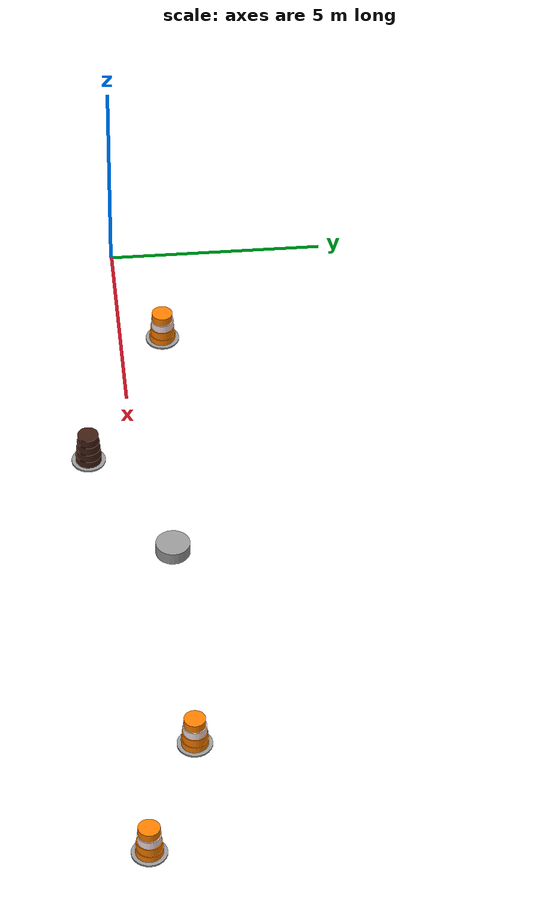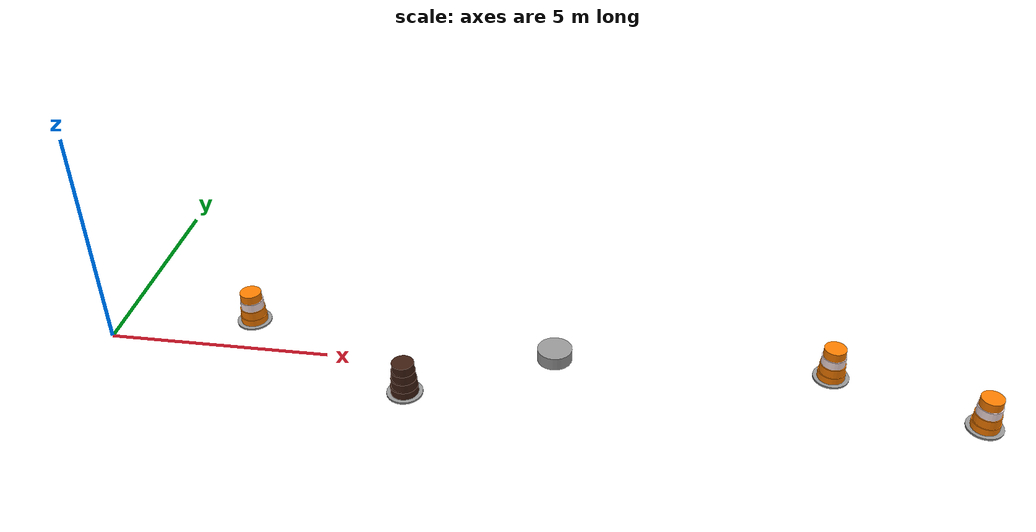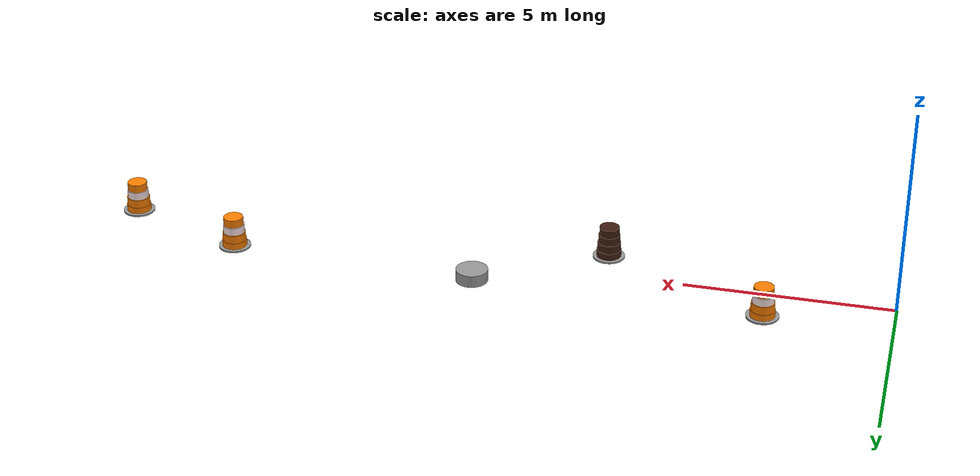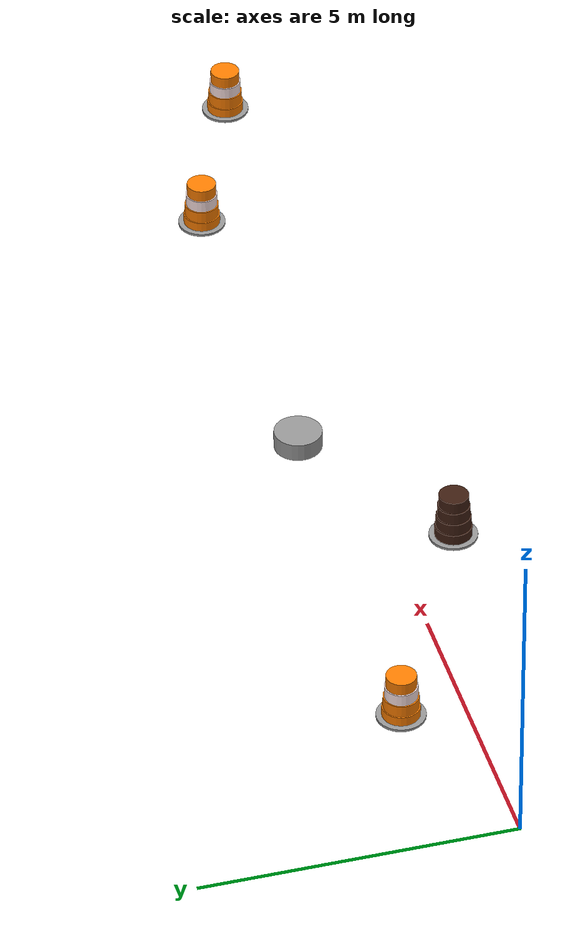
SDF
<sdf version="1.6">
 <world name="igvc_straight_pop">
  <gravity>0 0 -9.8</gravity>
  <magnetic_field>6e-06 2.3e-05 -4.2e-05</magnetic_field>
  <atmosphere type="adiabatic"/>
  <physics type="ode">
   <max_step_size>0.002</max_step_size>
   <real_time_update_rate>500</real_time_update_rate>
   <ode>
    <solver><type>quick</type><iters>50</iters><precon_iters>0</precon_iters><sor>1.300000</sor></solver>
    <constraints>
     <cfm>0.000000</cfm>
     <erp>0.200000</erp>
     <contact_max_correcting_vel>100.000000</contact_max_correcting_vel>
     <contact_surface_layer>0.001000</contact_surface_layer>
    </constraints>
   </ode>
  </physics>
  <scene><ambient>1 1 1 1</ambient><background>0.7 0.7 0.7 1</background><shadows>1</shadows></scene>
  <spherical_coordinates>
   <surface_model>EARTH_WGS84</surface_model>
   <latitude_deg>042.729306</latitude_deg>
   <longitude_deg>-73.680906</longitude_deg>
   <elevation>0</elevation>
   <heading_deg>180</heading_deg>
  </spherical_coordinates>
  <include><uri>model://sun</uri><pose>0 0 20   0 0 0</pose></include>
  <include>
   <uri>model://construction_barrel_orange</uri>
   <name>barrel_1</name>
   <pose>3 1 0   0 0 0</pose>
  </include>
  <include>
   <uri>model://construction_barrel_brown</uri>
   <name>barrel_2</name>
   <pose>7 -1 0   0 0 0</pose>
  </include>
  <include><uri>model://pothole</uri><name>pothole_1</name><pose>10 0.7 0   0 0 0</pose></include>
  <include>
   <uri>model://construction_barrel_orange</uri>
   <name>barrel_3</name>
   <pose>16 0.7 0   0 0 0</pose>
  </include>
  <include>
   <uri>model://construction_barrel_orange</uri>
   <name>barrel_4</name>
   <pose>19 -0.5 0   0 0 0</pose>
  </include>
  <plugin name="FixFrictionNode" filename="libFixFrictionNode.so"/>
 </world>
</sdf>

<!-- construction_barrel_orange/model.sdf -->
<sdf version='1.6'>
  <model name='construction_barrel_orange'>
    <link name='rubber_skirt'>
      <pose frame=''>0 0 0.02 0 -0 0</pose>
      <inertial>
        <mass>1</mass>
        <inertia>
          <ixx>0.145833</ixx>
          <ixy>0</ixy>
          <ixz>0</ixz>
          <iyy>0.145833</iyy>
          <iyz>0</iyz>
          <izz>0.125</izz>
        </inertia>
        <pose frame=''>0 0 0 0 -0 0</pose>
      </inertial>
      <self_collide>0</self_collide>
      <kinematic>0</kinematic>
      <visual name='visual'>
        <pose frame=''>0 0 0 0 -0 0</pose>
        <geometry>
          <cylinder>
            <radius>0.39</radius>
            <length>0.04</length>
          </cylinder>
        </geometry>
        <material>
          <lighting>1</lighting>
          <script>
            <uri>file://media/materials/scripts/gazebo.material</uri>
            <name>Gazebo/Grey</name>
          </script>
          <shader type='pixel'>
            <normal_map>__default__</normal_map>
          </shader>
          <ambient>0.3 0.3 0.3 1</ambient>
          <diffuse>0.7 0.7 0.7 1</diffuse>
          <specular>0.01 0.01 0.01 1</specular>
          <emissive>0 0 0 1</emissive>
        </material>
        <transparency>0</transparency>
        <cast_shadows>1</cast_shadows>
      </visual>
      <collision name='collision'>
        <laser_retro>0</laser_retro>
        <max_contacts>10</max_contacts>
        <pose frame=''>0 0 0 0 -0 0</pose>
        <geometry>
          <cylinder>
            <radius>0.39</radius>
            <length>0.04</length>
          </cylinder>
        </geometry>
        <surface>
          <friction>
            <ode>
              <mu>1</mu>
              <mu2>1</mu2>
              <fdir1>0 0 0</fdir1>
              <slip1>0</slip1>
              <slip2>0</slip2>
            </ode>
            <torsional>
              <coefficient>1</coefficient>
              <patch_radius>0</patch_radius>
              <surface_radius>0</surface_radius>
              <use_patch_radius>1</use_patch_radius>
              <ode>
                <slip>0</slip>
              </ode>
            </torsional>
          </friction>
          <bounce>
            <restitution_coefficient>0</restitution_coefficient>
            <threshold>1e+06</threshold>
          </bounce>
          <contact>
            <collide_without_contact>0</collide_without_contact>
            <collide_without_contact_bitmask>1</collide_without_contact_bitmask>
            <collide_bitmask>1</collide_bitmask>
            <ode>
              <soft_cfm>0</soft_cfm>
              <soft_erp>0.2</soft_erp>
              <kp>1e+13</kp>
              <kd>1</kd>
              <max_vel>0.01</max_vel>
              <min_depth>0</min_depth>
            </ode>
            <bullet>
              <split_impulse>1</split_impulse>
              <split_impulse_penetration_threshold>-0.01</split_impulse_penetration_threshold>
              <soft_cfm>0</soft_cfm>
              <soft_erp>0.2</soft_erp>
              <kp>1e+13</kp>
              <kd>1</kd>
            </bullet>
          </contact>
        </surface>
      </collision>
    </link>
    <link name='drum_1'>
      <pose frame=''>0 0 0.1 0 -0 0</pose>
      <inertial>
        <mass>0.201505</mass>
        <inertia>
          <ixx>0.0132759</ixx>
          <ixy>0</ixy>
          <ixz>0</ixz>
          <iyy>0.0132759</iyy>
          <iyz>0</iyz>
          <izz>0.0251882</izz>
        </inertia>
        <pose frame=''>0 0 0 0 -0 0</pose>
      </inertial>
      <self_collide>0</self_collide>
      <kinematic>0</kinematic>
      <visual name='visual'>
        <geometry>
          <cylinder>
            <radius>0.3</radius>
            <length>0.2</length>
          </cylinder>
        </geometry>
        <material>
          <script>
            <name>Gazebo/Grey</name>
            <uri>file://media/materials/scripts/gazebo.material</uri>
          </script>
          <shader type='pixel'>
            <normal_map>__default__</normal_map>
          </shader>
          <ambient>1 0.5 0 1</ambient>
          <diffuse>1 0.5 0 1</diffuse>
          <specular>1 0.5 0 1</specular>
          <emissive>0 0 0 1</emissive>
        </material>
        <pose frame=''>0 0 0 0 -0 0</pose>
        <transparency>0</transparency>
        <cast_shadows>1</cast_shadows>
      </visual>
      <collision name='collision'>
        <laser_retro>0</laser_retro>
        <max_contacts>10</max_contacts>
        <pose frame=''>0 0 0 0 -0 0</pose>
        <geometry>
          <cylinder>
            <radius>0.3</radius>
            <length>0.2</length>
          </cylinder>
        </geometry>
        <surface>
          <friction>
            <ode>
              <mu>1</mu>
              <mu2>1</mu2>
              <fdir1>0 0 0</fdir1>
              <slip1>0</slip1>
              <slip2>0</slip2>
            </ode>
            <torsional>
              <coefficient>1</coefficient>
              <patch_radius>0</patch_radius>
              <surface_radius>0</surface_radius>
              <use_patch_radius>1</use_patch_radius>
              <ode>
                <slip>0</slip>
              </ode>
            </torsional>
          </friction>
          <bounce>
            <restitution_coefficient>0</restitution_coefficient>
            <threshold>1e+06</threshold>
          </bounce>
          <contact>
            <collide_without_contact>0</collide_without_contact>
            <collide_without_contact_bitmask>1</collide_without_contact_bitmask>
            <collide_bitmask>1</collide_bitmask>
            <ode>
              <soft_cfm>0</soft_cfm>
              <soft_erp>0.2</soft_erp>
              <kp>1e+13</kp>
              <kd>1</kd>
              <max_vel>0.01</max_vel>
              <min_depth>0</min_depth>
            </ode>
            <bullet>
              <split_impulse>1</split_impulse>
              <split_impulse_penetration_threshold>-0.01</split_impulse_penetration_threshold>
              <soft_cfm>0</soft_cfm>
              <soft_erp>0.2</soft_erp>
              <kp>1e+13</kp>
              <kd>1</kd>
            </bullet>
          </contact>
        </surface>
      </collision>
    </link>
    <link name='drum_2'>
      <pose frame=''>0 0 0.3 0 -0 0</pose>
      <inertial>
        <mass>0.201505</mass>
        <inertia>
          <ixx>0.0132759</ixx>
          <ixy>0</ixy>
          <ixz>0</ixz>
          <iyy>0.0132759</iyy>
          <iyz>0</iyz>
          <izz>0.0251882</izz>
        </inertia>
        <pose frame=''>0 0 0 0 -0 0</pose>
      </inertial>
      <self_collide>0</self_collide>
      <kinematic>0</kinematic>
      <visual name='visual'>
        <geometry>
          <cylinder>
            <radius>0.28</radius>
            <length>0.2</length>
          </cylinder>
        </geometry>
        <material>
          <script>
            <name>Gazebo/Grey</name>
            <uri>file://media/materials/scripts/gazebo.material</uri>
          </script>
          <shader type='pixel'>
            <normal_map>__default__</normal_map>
          </shader>
          <ambient>1 0.5 0 1</ambient>
          <diffuse>1 0.5 0 1</diffuse>
          <specular>1 0.5 0 1</specular>
          <emissive>0 0 0 1</emissive>
        </material>
        <pose frame=''>0 0 0 0 -0 0</pose>
        <transparency>0</transparency>
        <cast_shadows>1</cast_shadows>
      </visual>
      <collision name='collision'>
        <laser_retro>0</laser_retro>
        <max_contacts>10</max_contacts>
        <pose frame=''>0 0 0 0 -0 0</pose>
        <geometry>
          <cylinder>
            <radius>0.28</radius>
            <length>0.2</length>
          </cylinder>
        </geometry>
        <surface>
          <friction>
            <ode>
              <mu>1</mu>
              <mu2>1</mu2>
              <fdir1>0 0 0</fdir1>
              <slip1>0</slip1>
              <slip2>0</slip2>
            </ode>
            <torsional>
              <coefficient>1</coefficient>
              <patch_radius>0</patch_radius>
              <surface_radius>0</surface_radius>
              <use_patch_radius>1</use_patch_radius>
              <ode>
                <slip>0</slip>
              </ode>
            </torsional>
          </friction>
          <bounce>
            <restitution_coefficient>0</restitution_coefficient>
            <threshold>1e+06</threshold>
          </bounce>
          <contact>
            <collide_without_contact>0</collide_without_contact>
            <collide_without_contact_bitmask>1</collide_without_contact_bitmask>
            <collide_bitmask>1</collide_bitmask>
            <ode>
              <soft_cfm>0</soft_cfm>
              <soft_erp>0.2</soft_erp>
              <kp>1e+13</kp>
              <kd>1</kd>
              <max_vel>0.01</max_vel>
              <min_depth>0</min_depth>
            </ode>
            <bullet>
              <split_impulse>1</split_impulse>
              <split_impulse_penetration_threshold>-0.01</split_impulse_penetration_threshold>
              <soft_cfm>0</soft_cfm>
              <soft_erp>0.2</soft_erp>
              <kp>1e+13</kp>
              <kd>1</kd>
            </bullet>
          </contact>
        </surface>
      </collision>
    </link>
    <link name='drum_3'>
      <pose frame=''>0 0 0.5 0 -0 0</pose>
      <inertial>
        <mass>0.201505</mass>
        <inertia>
          <ixx>0.0132759</ixx>
          <ixy>0</ixy>
          <ixz>0</ixz>
          <iyy>0.0132759</iyy>
          <iyz>0</iyz>
          <izz>0.0251882</izz>
        </inertia>
        <pose frame=''>0 0 0 0 -0 0</pose>
      </inertial>
      <self_collide>0</self_collide>
      <kinematic>0</kinematic>
      <visual name='visual'>
        <geometry>
          <cylinder>
            <radius>0.26</radius>
            <length>0.2</length>
          </cylinder>
        </geometry>
        <material>
          <script>
            <name>Gazebo/Grey</name>
            <uri>file://media/materials/scripts/gazebo.material</uri>
          </script>
          <shader type='pixel'>
            <normal_map>__default__</normal_map>
          </shader>
          <ambient>1 0.9 0.9 1</ambient>
          <diffuse>1 0.9 0.9 1</diffuse>
          <specular>1 0.9 0.9 1</specular>
          <emissive>0 0 0 1</emissive>
        </material>
        <pose frame=''>0 0 0 0 -0 0</pose>
        <transparency>0</transparency>
        <cast_shadows>1</cast_shadows>
      </visual>
      <collision name='collision'>
        <laser_retro>0</laser_retro>
        <max_contacts>10</max_contacts>
        <pose frame=''>0 0 0 0 -0 0</pose>
        <geometry>
          <cylinder>
            <radius>0.26</radius>
            <length>0.2</length>
          </cylinder>
        </geometry>
        <surface>
          <friction>
            <ode>
              <mu>1</mu>
              <mu2>1</mu2>
              <fdir1>0 0 0</fdir1>
              <slip1>0</slip1>
              <slip2>0</slip2>
            </ode>
            <torsional>
              <coefficient>1</coefficient>
              <patch_radius>0</patch_radius>
              <surface_radius>0</surface_radius>
              <use_patch_radius>1</use_patch_radius>
              <ode>
                <slip>0</slip>
              </ode>
            </torsional>
          </friction>
          <bounce>
            <restitution_coefficient>0</restitution_coefficient>
            <threshold>1e+06</threshold>
          </bounce>
          <contact>
            <collide_without_contact>0</collide_without_contact>
            <collide_without_contact_bitmask>1</collide_without_contact_bitmask>
            <collide_bitmask>1</collide_bitmask>
            <ode>
              <soft_cfm>0</soft_cfm>
              <soft_erp>0.2</soft_erp>
              <kp>1e+13</kp>
              <kd>1</kd>
              <max_vel>0.01</max_vel>
              <min_depth>0</min_depth>
            </ode>
            <bullet>
              <split_impulse>1</split_impulse>
              <split_impulse_penetration_threshold>-0.01</split_impulse_penetration_threshold>
              <soft_cfm>0</soft_cfm>
              <soft_erp>0.2</soft_erp>
              <kp>1e+13</kp>
              <kd>1</kd>
            </bullet>
          </contact>
        </surface>
      </collision>
    </link>
    <link name='drum_4'>
      <pose frame=''>0 0 0.7 0 -0 0</pose>
      <inertial>
        <mass>0.201505</mass>
        <inertia>
          <ixx>0.0132759</ixx>
          <ixy>0</ixy>
          <ixz>0</ixz>
          <iyy>0.0132759</iyy>
          <iyz>0</iyz>
          <izz>0.0251882</izz>
        </inertia>
        <pose frame=''>0 0 0 0 -0 0</pose>
      </inertial>
      <self_collide>0</self_collide>
      <kinematic>0</kinematic>
      <visual name='visual'>
        <geometry>
          <cylinder>
            <radius>0.24</radius>
            <length>0.2</length>
          </cylinder>
        </geometry>
        <material>
          <script>
            <name>Gazebo/Grey</name>
            <uri>file://media/materials/scripts/gazebo.material</uri>
          </script>
          <shader type='pixel'>
            <normal_map>__default__</normal_map>
          </shader>
          <ambient>1 0.5 0 1</ambient>
          <diffuse>1 0.5 0 1</diffuse>
          <specular>1 0.5 0 1</specular>
          <emissive>0 0 0 1</emissive>
        </material>
        <pose frame=''>0 0 0 0 -0 0</pose>
        <transparency>0</transparency>
        <cast_shadows>1</cast_shadows>
      </visual>
      <collision name='collision'>
        <laser_retro>0</laser_retro>
        <max_contacts>10</max_contacts>
        <pose frame=''>0 0 0 0 -0 0</pose>
        <geometry>
          <cylinder>
            <radius>0.24</radius>
            <length>0.2</length>
          </cylinder>
        </geometry>
        <surface>
          <friction>
            <ode>
              <mu>1</mu>
              <mu2>1</mu2>
              <fdir1>0 0 0</fdir1>
              <slip1>0</slip1>
              <slip2>0</slip2>
            </ode>
            <torsional>
              <coefficient>1</coefficient>
              <patch_radius>0</patch_radius>
              <surface_radius>0</surface_radius>
              <use_patch_radius>1</use_patch_radius>
              <ode>
                <slip>0</slip>
              </ode>
            </torsional>
          </friction>
          <bounce>
            <restitution_coefficient>0</restitution_coefficient>
            <threshold>1e+06</threshold>
          </bounce>
          <contact>
            <collide_without_contact>0</collide_without_contact>
            <collide_without_contact_bitmask>1</collide_without_contact_bitmask>
            <collide_bitmask>1</collide_bitmask>
            <ode>
              <soft_cfm>0</soft_cfm>
              <soft_erp>0.2</soft_erp>
              <kp>1e+13</kp>
              <kd>1</kd>
              <max_vel>0.01</max_vel>
              <min_depth>0</min_depth>
            </ode>
            <bullet>
              <split_impulse>1</split_impulse>
              <split_impulse_penetration_threshold>-0.01</split_impulse_penetration_threshold>
              <soft_cfm>0</soft_cfm>
              <soft_erp>0.2</soft_erp>
              <kp>1e+13</kp>
              <kd>1</kd>
            </bullet>
          </contact>
        </surface>
      </collision>
    </link>
    <joint name='drum_1_JOINT_1' type='fixed'>
      <parent>drum_1</parent>
      <child>drum_2</child>
      <pose frame=''>0 0 0 0 -0 0</pose>
      <physics>
        <ode>
          <limit>
            <cfm>0</cfm>
            <erp>0.2</erp>
          </limit>
          <suspension>
            <cfm>0</cfm>
            <erp>0.2</erp>
          </suspension>
        </ode>
      </physics>
    </joint>
    <joint name='drum_2_JOINT_3' type='fixed'>
      <parent>drum_2</parent>
      <child>drum_3</child>
      <pose frame=''>0 0 0 0 -0 0</pose>
      <physics>
        <ode>
          <limit>
            <cfm>0</cfm>
            <erp>0.2</erp>
          </limit>
          <suspension>
            <cfm>0</cfm>
            <erp>0.2</erp>
          </suspension>
        </ode>
      </physics>
    </joint>
    <joint name='drum_3_JOINT_2' type='fixed'>
      <parent>drum_3</parent>
      <child>drum_4</child>
      <pose frame=''>0 0 0 0 -0 0</pose>
      <physics>
        <ode>
          <limit>
            <cfm>0</cfm>
            <erp>0.2</erp>
          </limit>
          <suspension>
            <cfm>0</cfm>
            <erp>0.2</erp>
          </suspension>
        </ode>
      </physics>
    </joint>
    <joint name='rubber_skirt_JOINT_0' type='fixed'>
      <parent>rubber_skirt</parent>
      <child>drum_1</child>
      <pose frame=''>0 0 0 0 -0 0</pose>
      <physics>
        <ode>
          <limit>
            <cfm>0</cfm>
            <erp>0.2</erp>
          </limit>
          <suspension>
            <cfm>0</cfm>
            <erp>0.2</erp>
          </suspension>
        </ode>
      </physics>
    </joint>
    <static>1</static>
    <allow_auto_disable>1</allow_auto_disable>
  </model>
</sdf>

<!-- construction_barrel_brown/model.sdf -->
<sdf version='1.6'>
  <model name='construction_barrel_brown'>
    <link name='link_0'>
      <pose frame=''>0 0 0.005 0 -0 0</pose>
      <inertial>
        <mass>1</mass>
        <inertia>
          <ixx>0.145833</ixx>
          <ixy>0</ixy>
          <ixz>0</ixz>
          <iyy>0.145833</iyy>
          <iyz>0</iyz>
          <izz>0.125</izz>
        </inertia>
        <pose frame=''>0 0 0 0 -0 0</pose>
      </inertial>
      <gravity>1</gravity>
      <self_collide>0</self_collide>
      <kinematic>0</kinematic>
      <visual name='visual'>
        <pose frame=''>0 0 0 0 -0 0</pose>
        <geometry>
          <cylinder>
            <radius>0.39</radius>
            <length>0.04</length>
          </cylinder>
        </geometry>
        <material>
          <lighting>1</lighting>
          <script>
            <uri>file://media/materials/scripts/gazebo.material</uri>
            <name>Gazebo/Grey</name>
          </script>
          <shader type='pixel'>
            <normal_map>__default__</normal_map>
          </shader>
          <ambient>0.3 0.3 0.3 1</ambient>
          <diffuse>0.7 0.7 0.7 1</diffuse>
          <specular>0.01 0.01 0.01 1</specular>
          <emissive>0 0 0 1</emissive>
        </material>
        <transparency>0</transparency>
        <cast_shadows>1</cast_shadows>
      </visual>
      <collision name='collision'>
        <laser_retro>0</laser_retro>
        <max_contacts>10</max_contacts>
        <pose frame=''>0 0 0 0 -0 0</pose>
        <geometry>
          <cylinder>
            <radius>0.39</radius>
            <length>0.04</length>
          </cylinder>
        </geometry>
        <surface>
          <friction>
            <ode>
              <mu>1</mu>
              <mu2>1</mu2>
              <fdir1>0 0 0</fdir1>
              <slip1>0</slip1>
              <slip2>0</slip2>
            </ode>
            <torsional>
              <coefficient>1</coefficient>
              <patch_radius>0</patch_radius>
              <surface_radius>0</surface_radius>
              <use_patch_radius>1</use_patch_radius>
              <ode>
                <slip>0</slip>
              </ode>
            </torsional>
          </friction>
          <bounce>
            <restitution_coefficient>0</restitution_coefficient>
            <threshold>1e+06</threshold>
          </bounce>
          <contact>
            <collide_without_contact>0</collide_without_contact>
            <collide_without_contact_bitmask>1</collide_without_contact_bitmask>
            <collide_bitmask>1</collide_bitmask>
            <ode>
              <soft_cfm>0</soft_cfm>
              <soft_erp>0.2</soft_erp>
              <kp>1e+13</kp>
              <kd>1</kd>
              <max_vel>0.01</max_vel>
              <min_depth>0</min_depth>
            </ode>
            <bullet>
              <split_impulse>1</split_impulse>
              <split_impulse_penetration_threshold>-0.01</split_impulse_penetration_threshold>
              <soft_cfm>0</soft_cfm>
              <soft_erp>0.2</soft_erp>
              <kp>1e+13</kp>
              <kd>1</kd>
            </bullet>
          </contact>
        </surface>
      </collision>
    </link>
    <link name='link_clone'>
      <pose frame=''>0 0 0.1 0 -0 0</pose>
      <inertial>
        <mass>0.201505</mass>
        <inertia>
          <ixx>0.0132759</ixx>
          <ixy>0</ixy>
          <ixz>0</ixz>
          <iyy>0.0132759</iyy>
          <iyz>0</iyz>
          <izz>0.0251882</izz>
        </inertia>
        <pose frame=''>0 0 0 0 -0 0</pose>
      </inertial>
      <self_collide>0</self_collide>
      <kinematic>0</kinematic>
      <gravity>1</gravity>
      <visual name='visual'>
        <geometry>
          <cylinder>
            <radius>0.3</radius>
            <length>0.2</length>
          </cylinder>
        </geometry>
        <material>
          <script>
            <name>Gazebo/Grey</name>
            <uri>file://media/materials/scripts/gazebo.material</uri>
          </script>
          <shader type='pixel'>
            <normal_map>__default__</normal_map>
          </shader>
          <ambient>0.25 0.12 0.07 1</ambient>
          <diffuse>0.25 0.12 0.07 1</diffuse>
          <specular>0.25 0.12 0.07 1</specular>
          <emissive>0 0 0 1</emissive>
        </material>
        <pose frame=''>0 0 0 0 -0 0</pose>
        <transparency>0</transparency>
        <cast_shadows>1</cast_shadows>
      </visual>
      <collision name='collision'>
        <laser_retro>0</laser_retro>
        <max_contacts>10</max_contacts>
        <pose frame=''>0 0 0 0 -0 0</pose>
        <geometry>
          <cylinder>
            <radius>0.3</radius>
            <length>0.2</length>
          </cylinder>
        </geometry>
        <surface>
          <friction>
            <ode>
              <mu>1</mu>
              <mu2>1</mu2>
              <fdir1>0 0 0</fdir1>
              <slip1>0</slip1>
              <slip2>0</slip2>
            </ode>
            <torsional>
              <coefficient>1</coefficient>
              <patch_radius>0</patch_radius>
              <surface_radius>0</surface_radius>
              <use_patch_radius>1</use_patch_radius>
              <ode>
                <slip>0</slip>
              </ode>
            </torsional>
          </friction>
          <bounce>
            <restitution_coefficient>0</restitution_coefficient>
            <threshold>1e+06</threshold>
          </bounce>
          <contact>
            <collide_without_contact>0</collide_without_contact>
            <collide_without_contact_bitmask>1</collide_without_contact_bitmask>
            <collide_bitmask>1</collide_bitmask>
            <ode>
              <soft_cfm>0</soft_cfm>
              <soft_erp>0.2</soft_erp>
              <kp>1e+13</kp>
              <kd>1</kd>
              <max_vel>0.01</max_vel>
              <min_depth>0</min_depth>
            </ode>
            <bullet>
              <split_impulse>1</split_impulse>
              <split_impulse_penetration_threshold>-0.01</split_impulse_penetration_threshold>
              <soft_cfm>0</soft_cfm>
              <soft_erp>0.2</soft_erp>
              <kp>1e+13</kp>
              <kd>1</kd>
            </bullet>
          </contact>
        </surface>
      </collision>
    </link>
    <link name='link_clone_clone'>
      <pose frame=''>0 0 0.3 0 -0 0</pose>
      <inertial>
        <mass>0.201505</mass>
        <inertia>
          <ixx>0.0132759</ixx>
          <ixy>0</ixy>
          <ixz>0</ixz>
          <iyy>0.0132759</iyy>
          <iyz>0</iyz>
          <izz>0.0251882</izz>
        </inertia>
        <pose frame=''>0 0 0 0 -0 0</pose>
      </inertial>
      <self_collide>0</self_collide>
      <kinematic>0</kinematic>
      <gravity>1</gravity>
      <visual name='visual'>
        <geometry>
          <cylinder>
            <radius>0.28</radius>
            <length>0.2</length>
          </cylinder>
        </geometry>
        <material>
          <script>
            <name>Gazebo/Grey</name>
            <uri>file://media/materials/scripts/gazebo.material</uri>
          </script>
          <shader type='pixel'>
            <normal_map>__default__</normal_map>
          </shader>
          <ambient>0.25 0.12 0.07 1</ambient>
          <diffuse>0.25 0.12 0.07 1</diffuse>
          <specular>0.25 0.12 0.07 1</specular>
          <emissive>0 0 0 1</emissive>
        </material>
        <pose frame=''>0 0 0 0 -0 0</pose>
        <transparency>0</transparency>
        <cast_shadows>1</cast_shadows>
      </visual>
      <collision name='collision'>
        <laser_retro>0</laser_retro>
        <max_contacts>10</max_contacts>
        <pose frame=''>0 0 0 0 -0 0</pose>
        <geometry>
          <cylinder>
            <radius>0.28</radius>
            <length>0.2</length>
          </cylinder>
        </geometry>
        <surface>
          <friction>
            <ode>
              <mu>1</mu>
              <mu2>1</mu2>
              <fdir1>0 0 0</fdir1>
              <slip1>0</slip1>
              <slip2>0</slip2>
            </ode>
            <torsional>
              <coefficient>1</coefficient>
              <patch_radius>0</patch_radius>
              <surface_radius>0</surface_radius>
              <use_patch_radius>1</use_patch_radius>
              <ode>
                <slip>0</slip>
              </ode>
            </torsional>
          </friction>
          <bounce>
            <restitution_coefficient>0</restitution_coefficient>
            <threshold>1e+06</threshold>
          </bounce>
          <contact>
            <collide_without_contact>0</collide_without_contact>
            <collide_without_contact_bitmask>1</collide_without_contact_bitmask>
            <collide_bitmask>1</collide_bitmask>
            <ode>
              <soft_cfm>0</soft_cfm>
              <soft_erp>0.2</soft_erp>
              <kp>1e+13</kp>
              <kd>1</kd>
              <max_vel>0.01</max_vel>
              <min_depth>0</min_depth>
            </ode>
            <bullet>
              <split_impulse>1</split_impulse>
              <split_impulse_penetration_threshold>-0.01</split_impulse_penetration_threshold>
              <soft_cfm>0</soft_cfm>
              <soft_erp>0.2</soft_erp>
              <kp>1e+13</kp>
              <kd>1</kd>
            </bullet>
          </contact>
        </surface>
      </collision>
    </link>
    <link name='link_clone_clone_0'>
      <pose frame=''>0 0 0.5 0 0 0</pose>
      <inertial>
        <mass>0.201505</mass>
        <inertia>
          <ixx>0.0132759</ixx>
          <ixy>0</ixy>
          <ixz>0</ixz>
          <iyy>0.0132759</iyy>
          <iyz>0</iyz>
          <izz>0.0251882</izz>
        </inertia>
        <pose frame=''>0 0 0 0 -0 0</pose>
      </inertial>
      <self_collide>0</self_collide>
      <kinematic>0</kinematic>
      <gravity>1</gravity>
      <visual name='visual'>
        <geometry>
          <cylinder>
            <radius>0.26</radius>
            <length>0.2</length>
          </cylinder>
        </geometry>
        <material>
          <script>
            <name>Gazebo/Grey</name>
            <uri>file://media/materials/scripts/gazebo.material</uri>
          </script>
          <shader type='pixel'>
            <normal_map>__default__</normal_map>
          </shader>
          <ambient>0.25 0.12 0.07 1</ambient>
          <diffuse>0.25 0.12 0.07 1</diffuse>
          <specular>0.25 0.12 0.07 1</specular>
          <emissive>0 0 0 1</emissive>
        </material>
        <pose frame=''>0 0 0 0 -0 0</pose>
        <transparency>0</transparency>
        <cast_shadows>1</cast_shadows>
      </visual>
      <collision name='collision'>
        <laser_retro>0</laser_retro>
        <max_contacts>10</max_contacts>
        <pose frame=''>0 0 0 0 -0 0</pose>
        <geometry>
          <cylinder>
            <radius>0.26</radius>
            <length>0.2</length>
          </cylinder>
        </geometry>
        <surface>
          <friction>
            <ode>
              <mu>1</mu>
              <mu2>1</mu2>
              <fdir1>0 0 0</fdir1>
              <slip1>0</slip1>
              <slip2>0</slip2>
            </ode>
            <torsional>
              <coefficient>1</coefficient>
              <patch_radius>0</patch_radius>
              <surface_radius>0</surface_radius>
              <use_patch_radius>1</use_patch_radius>
              <ode>
                <slip>0</slip>
              </ode>
            </torsional>
          </friction>
          <bounce>
            <restitution_coefficient>0</restitution_coefficient>
            <threshold>1e+06</threshold>
          </bounce>
          <contact>
            <collide_without_contact>0</collide_without_contact>
            <collide_without_contact_bitmask>1</collide_without_contact_bitmask>
            <collide_bitmask>1</collide_bitmask>
            <ode>
              <soft_cfm>0</soft_cfm>
              <soft_erp>0.2</soft_erp>
              <kp>1e+13</kp>
              <kd>1</kd>
              <max_vel>0.01</max_vel>
              <min_depth>0</min_depth>
            </ode>
            <bullet>
              <split_impulse>1</split_impulse>
              <split_impulse_penetration_threshold>-0.01</split_impulse_penetration_threshold>
              <soft_cfm>0</soft_cfm>
              <soft_erp>0.2</soft_erp>
              <kp>1e+13</kp>
              <kd>1</kd>
            </bullet>
          </contact>
        </surface>
      </collision>
    </link>
    <link name='link_clone_clone_1'>
      <pose frame=''>-0 -0 0.7 0 -0 0</pose>
      <inertial>
        <mass>0.201505</mass>
        <inertia>
          <ixx>0.0132759</ixx>
          <ixy>0</ixy>
          <ixz>0</ixz>
          <iyy>0.0132759</iyy>
          <iyz>0</iyz>
          <izz>0.0251882</izz>
        </inertia>
        <pose frame=''>0 0 0 0 -0 0</pose>
      </inertial>
      <self_collide>0</self_collide>
      <kinematic>0</kinematic>
      <gravity>1</gravity>
      <visual name='visual'>
        <geometry>
          <cylinder>
            <radius>0.24</radius>
            <length>0.2</length>
          </cylinder>
        </geometry>
        <material>
          <script>
            <name>Gazebo/Grey</name>
            <uri>file://media/materials/scripts/gazebo.material</uri>
          </script>
          <shader type='pixel'>
            <normal_map>__default__</normal_map>
          </shader>
          <ambient>0.25 0.12 0.07 1</ambient>
          <diffuse>0.25 0.12 0.07 1</diffuse>
          <specular>0.25 0.12 0.07 1</specular>
          <emissive>0 0 0 1</emissive>
        </material>
        <pose frame=''>0 0 0 0 -0 0</pose>
        <transparency>0</transparency>
        <cast_shadows>1</cast_shadows>
      </visual>
      <collision name='collision'>
        <laser_retro>0</laser_retro>
        <max_contacts>10</max_contacts>
        <pose frame=''>0 0 0 0 -0 0</pose>
        <geometry>
          <cylinder>
            <radius>0.24</radius>
            <length>0.2</length>
          </cylinder>
        </geometry>
        <surface>
          <friction>
            <ode>
              <mu>1</mu>
              <mu2>1</mu2>
              <fdir1>0 0 0</fdir1>
              <slip1>0</slip1>
              <slip2>0</slip2>
            </ode>
            <torsional>
              <coefficient>1</coefficient>
              <patch_radius>0</patch_radius>
              <surface_radius>0</surface_radius>
              <use_patch_radius>1</use_patch_radius>
              <ode>
                <slip>0</slip>
              </ode>
            </torsional>
          </friction>
          <bounce>
            <restitution_coefficient>0</restitution_coefficient>
            <threshold>1e+06</threshold>
          </bounce>
          <contact>
            <collide_without_contact>0</collide_without_contact>
            <collide_without_contact_bitmask>1</collide_without_contact_bitmask>
            <collide_bitmask>1</collide_bitmask>
            <ode>
              <soft_cfm>0</soft_cfm>
              <soft_erp>0.2</soft_erp>
              <kp>1e+13</kp>
              <kd>1</kd>
              <max_vel>0.01</max_vel>
              <min_depth>0</min_depth>
            </ode>
            <bullet>
              <split_impulse>1</split_impulse>
              <split_impulse_penetration_threshold>-0.01</split_impulse_penetration_threshold>
              <soft_cfm>0</soft_cfm>
              <soft_erp>0.2</soft_erp>
              <kp>1e+13</kp>
              <kd>1</kd>
            </bullet>
          </contact>
        </surface>
      </collision>
    </link>
    <static>1</static>
    <allow_auto_disable>1</allow_auto_disable>
  </model>
</sdf>

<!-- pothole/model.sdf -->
<sdf version='1.6'>
  <model name='pothole'>
    <link name='link'>
      <pose frame=''>0 0 0.006 0 -0 0</pose>
      <inertial>
        <mass>1</mass>
        <inertia>
          <ixx>0.145833</ixx>
          <ixy>0</ixy>
          <ixz>0</ixz>
          <iyy>0.145833</iyy>
          <iyz>0</iyz>
          <izz>0.125</izz>
        </inertia>
        <pose frame=''>0 0 0 0 -0 0</pose>
      </inertial>
      <self_collide>0</self_collide>
      <kinematic>0</kinematic>
      <visual name='visual'>
        <pose frame=''>0 0 0 0 -0 0</pose>
        <geometry>
          <cylinder>
            <radius>0.39</radius>
            <length>0.3</length>
          </cylinder>
        </geometry>
        <material>
          <lighting>1</lighting>
          <script>
            <uri>file://media/materials/scripts/gazebo.material</uri>
            <name>Gazebo/Grey</name>
          </script>
          <shader type='pixel'>
            <normal_map>__default__</normal_map>
          </shader>
          <ambient>1 1 1 1</ambient>
          <diffuse>1 1 1 1</diffuse>
          <specular>1 1 1 1</specular>
          <emissive>0 0 0 1</emissive>
        </material>
        <transparency>0</transparency>
        <cast_shadows>1</cast_shadows>
      </visual>
      <collision name='collision'>
        <laser_retro>0</laser_retro>
        <max_contacts>10</max_contacts>
        <pose frame=''>0 0 0 0 -0 0</pose>
        <geometry>
          <cylinder>
            <radius>0.39</radius>
            <length>0.3</length>
          </cylinder>
        </geometry>
        <surface>
          <friction>
            <ode>
              <mu>1</mu>
              <mu2>1</mu2>
              <fdir1>0 0 0</fdir1>
              <slip1>0</slip1>
              <slip2>0</slip2>
            </ode>
            <torsional>
              <coefficient>1</coefficient>
              <patch_radius>0</patch_radius>
              <surface_radius>0</surface_radius>
              <use_patch_radius>1</use_patch_radius>
              <ode>
                <slip>0</slip>
              </ode>
            </torsional>
          </friction>
          <bounce>
            <restitution_coefficient>0</restitution_coefficient>
            <threshold>1e+06</threshold>
          </bounce>
          <contact>
            <collide_without_contact>0</collide_without_contact>
            <collide_without_contact_bitmask>1</collide_without_contact_bitmask>
            <collide_bitmask>1</collide_bitmask>
            <ode>
              <soft_cfm>0</soft_cfm>
              <soft_erp>0.2</soft_erp>
              <kp>1e+13</kp>
              <kd>1</kd>
              <max_vel>0.01</max_vel>
              <min_depth>0</min_depth>
            </ode>
            <bullet>
              <split_impulse>1</split_impulse>
              <split_impulse_penetration_threshold>-0.01</split_impulse_penetration_threshold>
              <soft_cfm>0</soft_cfm>
              <soft_erp>0.2</soft_erp>
              <kp>1e+13</kp>
              <kd>1</kd>
            </bullet>
          </contact>
        </surface>
      </collision>
    </link>
    <static>1</static>
    <allow_auto_disable>1</allow_auto_disable>
  </model>
</sdf>
